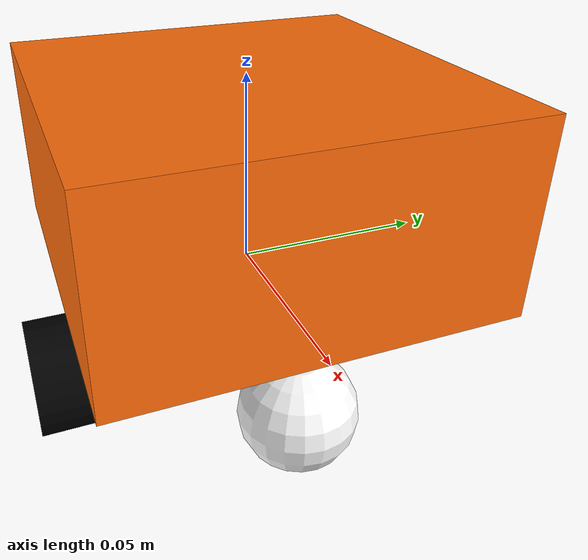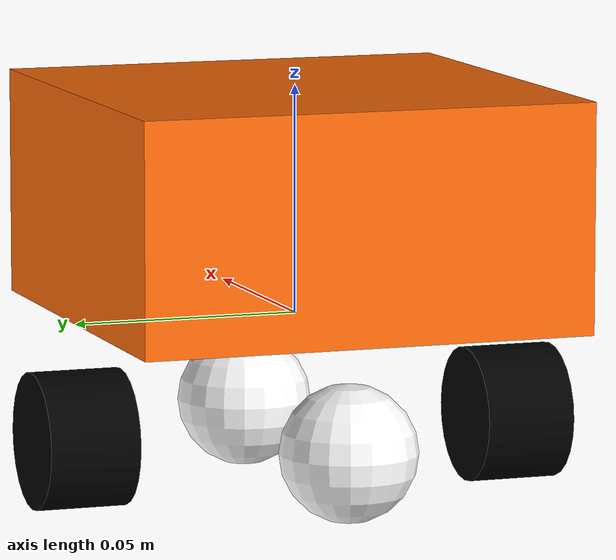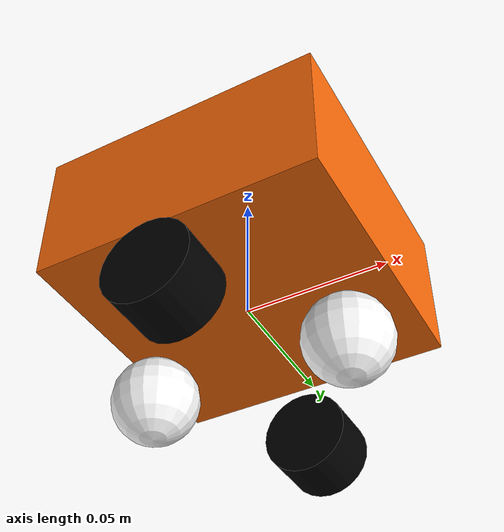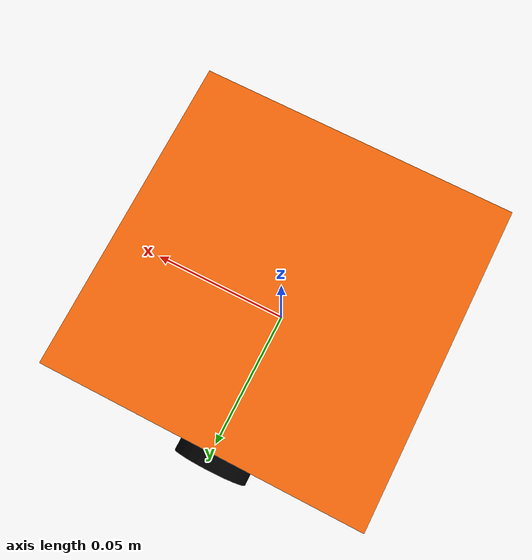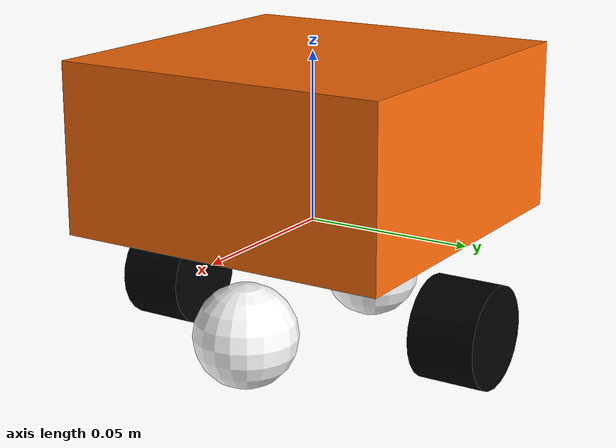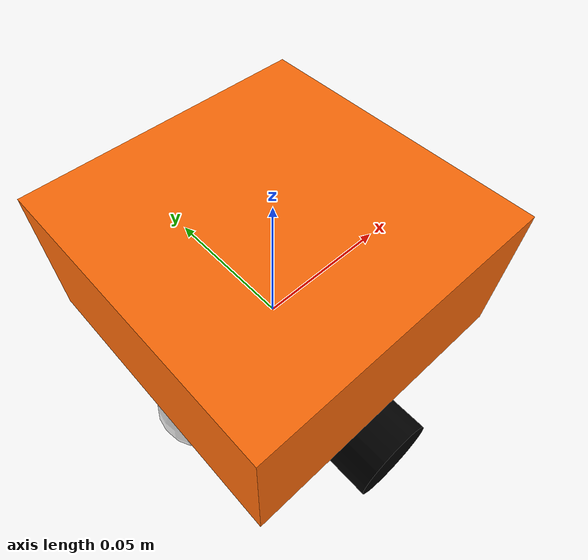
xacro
<?xml version="1.0"?>
<!-- Basic differential drive mobile base -->
<robot xmlns:xacro="http://www.ros.org/wiki/xacro" name="diffdrive_robot">
  <xacro:arg name="prefix" default="" />
  <xacro:arg name="use_mock_hardware" default="false" />
  <!-- true: the simulated robot (rocko_env/SimPlant, Tier 3) instead of the real hardware or the
       mock. Wins over use_mock_hardware if both are true. -->
  <xacro:arg name="use_sim_plant" default="false" />

  <!-- ESTIMATE, NOT MEASURED. Nothing below was weighed or measured on ROCKO. -->
  <xacro:arg name="wheel_radius_m" default="0.06" />
  <xacro:arg name="belt_ratio" default="1.355" />
  <xacro:arg name="wheel_mass_kg" default="0.3" />
  <xacro:arg name="body_mass_kg" default="2.0" />
  <xacro:arg name="com_height_m" default="0.20" />
  <xacro:arg name="body_height_m" default="0.40" />
  <xacro:arg name="body_depth_m" default="0.10" />
  <xacro:arg name="gravity_m_s2" default="9.81" />
  <xacro:arg name="motor_stall_torque_Nm" default="0.774725" />
  <!-- 1150 RPM = 1150/60*2*pi rad/s, floating point on purpose; see SimPlantModel.hpp. -->
  <xacro:arg name="motor_no_load_speed_rad_s" default="120.42771838760874" />
  <xacro:arg name="motor_stall_current_A" default="9.2" />
  <xacro:arg name="motor_no_load_current_A" default="0.25" />
  <xacro:arg name="coulomb_friction_Nm" default="0.0" />
  <xacro:arg name="battery_voltage_V" default="12.0" />
  <xacro:arg name="motor_rated_voltage_V" default="12.0" />
  <xacro:arg name="imu_delay_ms" default="20" />
  <xacro:arg name="imu_pitch_bias_deg" default="0.0" />
  <xacro:arg name="fallen_pitch_deg" default="60.0" />
  <!-- Conventions and switches: assumptions, not physics (sim-plant.md §2.4). -->
  <xacro:arg name="pitch_sign" default="-1" />
  <xacro:arg name="encoder_sign" default="1" />
  <xacro:arg name="model_write_quirks" default="true" />
  <xacro:arg name="model_encoder_node" default="true" />
  <xacro:arg name="imu_delay_max_ms" default="100" />
  <!-- Scenario and fault injection, all OFF by default. Times count from release. -->
  <xacro:arg name="initial_pitch_deg" default="0.0" />
  <xacro:arg name="disable_torque" default="false" />
  <xacro:arg name="imu_fault_start_s" default="0.0" />
  <xacro:arg name="imu_fault_duration_s" default="0.0" />
  <xacro:arg name="impulse_time_s" default="-1.0" />
  <xacro:arg name="impulse_angular_velocity_deg_per_s" default="0.0" />

  <xacro:include filename="$(find rocko_env)/urdf/rocko_description.urdf.xacro" />

  <!-- Import Rviz colors -->
  <xacro:include filename="$(find rocko_env)/urdf/rocko.materials.xacro" />

  <!-- Import diffbot ros2_control description -->
  <xacro:include filename="$(find rocko_env)/ros2_control/rocko.ros2_control.xacro" />

  <xacro:diffbot prefix="$(arg prefix)" />

  <xacro:rocko_ros2_control
    name="DiffBot" prefix="$(arg prefix)" use_mock_hardware="$(arg use_mock_hardware)"
    use_sim_plant="$(arg use_sim_plant)"/>

</robot>

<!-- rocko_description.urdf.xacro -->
<robot xmlns:xacro="http://www.ros.org/wiki/xacro">

  <xacro:macro name="diffbot" params="prefix">

  <!-- Constants for robot dimensions -->
  <xacro:property name="PI" value="3.1415926535897931"/>
  <xacro:property name="base_mass" value="0.3" /> <!-- arbitrary value for base mass -->
  <xacro:property name="base_width" value="0.1" />
  <xacro:property name="base_length" value="0.1" />
  <xacro:property name="base_height" value="0.05" />
  <xacro:property name="wheel_mass" value="0.3" /> <!-- arbitrary value for wheel mass -->
  <xacro:property name="wheel_len" value="0.020" />
  <xacro:property name="wheel_radius" value="0.015" />
  <xacro:property name="caster_wheel_mass" value="0.1" /> <!-- arbitrary value for caster wheel mass -->
  <xacro:property name="caster_wheel_radius" value="0.015" />
  <xacro:property name="z_offset" value="-${base_height/2}" /> <!-- Space btw top of beam and the each joint -->

  <!-- Base Link -->
  <link name="${prefix}base_link">
    <collision>
      <origin xyz="0 0 0" rpy="0 0 0"/>
      <geometry>
        <box size="${base_width} ${base_length} ${base_height}"/>
      </geometry>
    </collision>

    <visual>
      <origin xyz="0 0 ${base_height/2}" rpy="0 0 0"/>
      <geometry>
        <box size="${base_width} ${base_length} ${base_height}"/>
      </geometry>
      <material name="orange"/>
    </visual>

    <inertial>
      <origin xyz="0 0 0" rpy="0 0 0"/>
      <mass value="${base_mass}"/>
      <inertia
        ixx="${base_mass / 12.0 * (base_length*base_length + base_height*base_height)}" ixy="0.0" ixz="0.0"
        iyy="${base_mass / 12.0 * (base_height*base_height + base_width*base_width)}" iyz="0.0"
        izz="${base_mass / 12.0 * (base_width*base_width + base_length*base_length)}"/>
      </inertial>
    </link>

    <joint name="${prefix}left_wheel_joint" type="continuous">
      <parent link="${prefix}base_link"/>
      <child link="${prefix}left_wheel"/>
      <origin xyz="0 -${base_width/2} ${z_offset}" rpy="0 0 0"/>
      <axis xyz="0 1 0"/>
      <dynamics damping="0.2"/>
      <limit effort="100" velocity="1.0"/>
    </joint>

    <!-- left wheel Link -->
    <link name="${prefix}left_wheel">
      <collision>
        <origin xyz="0 0 0" rpy="${PI/2} 0 0"/>
        <geometry>
          <cylinder length="${wheel_len}" radius="${wheel_radius}"/>
        </geometry>
      </collision>

      <visual>
        <origin xyz="0 0 0" rpy="${PI/2} 0 0"/>
        <geometry>
          <cylinder length="${wheel_len}" radius="${wheel_radius}"/>
        </geometry>
        <material name="black"/>
      </visual>

      <inertial>
        <origin xyz="0 0 0" rpy="${PI/2} 0 0"/>
        <mass value="${wheel_mass}"/>
        <inertia
          ixx="${wheel_mass / 12.0 * (3*wheel_radius*wheel_radius + wheel_len*wheel_len)}" ixy="0.0" ixz="0.0"
          iyy="${wheel_mass / 12.0 * (3*wheel_radius*wheel_radius + wheel_len*wheel_len)}" iyz="0.0"
          izz="${wheel_mass / 2.0 * wheel_radius*wheel_radius}"/>
        </inertial>
      </link>

    <joint name="${prefix}right_wheel_joint" type="continuous">
      <parent link="${prefix}base_link"/>
      <child link="${prefix}right_wheel"/>
      <origin xyz="0 ${base_width/2} ${z_offset}" rpy="0 0 0"/>
      <axis xyz="0 1 0"/>
      <dynamics damping="0.2"/>
      <limit effort="100" velocity="1.0"/>
    </joint>

    <!-- right wheel Link -->
    <link name="${prefix}right_wheel">
      <collision>
        <origin xyz="0 0 0" rpy="${PI/2} 0 0"/>
        <geometry>
          <cylinder length="${wheel_len}" radius="${wheel_radius}"/>
        </geometry>
      </collision>

      <visual>
        <origin xyz="0 0 0" rpy="${PI/2} 0 0"/>
        <geometry>
          <cylinder length="${wheel_len}" radius="${wheel_radius}"/>
        </geometry>
        <material name="black"/>
      </visual>

      <inertial>
        <origin xyz="0 0 0" rpy="${PI/2} 0 0"/>
        <mass value="${wheel_mass}"/>
        <inertia
          ixx="${wheel_mass / 12.0 * (3*wheel_radius*wheel_radius + wheel_len*wheel_len)}" ixy="0.0" ixz="0.0"
          iyy="${wheel_mass / 12.0 * (3*wheel_radius*wheel_radius + wheel_len*wheel_len)}" iyz="0.0"
          izz="${wheel_mass / 2.0 * wheel_radius*wheel_radius}"/>
        </inertial>
      </link>

    <joint name="${prefix}caster_frontal_wheel_joint" type="fixed">
      <parent link="${prefix}base_link"/>
      <child link="${prefix}caster_frontal_wheel"/>
      <origin xyz="${base_width/2 - caster_wheel_radius} 0 ${z_offset}" rpy="0 0 0"/>
    </joint>

    <!-- caster frontal wheel Link -->
    <link name="${prefix}caster_frontal_wheel">
      <collision>
        <origin xyz="0 0 0" rpy="0 0 0"/>
        <geometry>
          <sphere radius="${caster_wheel_radius}"/>
        </geometry>
      </collision>

      <visual>
        <origin xyz="0 0 0" rpy="0 0 0"/>
        <geometry>
          <sphere radius="${caster_wheel_radius}"/>
        </geometry>
        <material name="white"/>
      </visual>

      <inertial>
        <origin xyz="0 0 0" rpy="0 0 0"/>
        <mass value="${caster_wheel_mass}"/>
        <inertia
          ixx="${caster_wheel_mass * 0.4 * (caster_wheel_radius * caster_wheel_radius)}" ixy="0.0" ixz="0.0"
          iyy="${caster_wheel_mass * 0.4 * (caster_wheel_radius * caster_wheel_radius)}" iyz="0.0"
          izz="${caster_wheel_mass * 0.4 * (caster_wheel_radius * caster_wheel_radius)}"/>
        </inertial>
      </link>

    <joint name="${prefix}caster_rear_wheel_joint" type="fixed">
      <parent link="${prefix}base_link"/>
      <child link="${prefix}caster_rear_wheel"/>
      <origin xyz="${-base_width/2 + caster_wheel_radius} 0 ${z_offset}" rpy="0 0 0"/>
    </joint>

    <!-- caster rear wheel Link -->
    <link name="${prefix}caster_rear_wheel">
      <collision>
        <origin xyz="0 0 0" rpy="0 0 0"/>
        <geometry>
          <sphere radius="${caster_wheel_radius}"/>
        </geometry>
      </collision>

      <visual>
        <origin xyz="0 0 0" rpy="0 0 0"/>
        <geometry>
          <sphere radius="${caster_wheel_radius}"/>
        </geometry>
        <material name="white"/>
      </visual>

      <inertial>
        <origin xyz="0 0 0" rpy="0 0 0"/>
        <mass value="${caster_wheel_mass}"/>
        <inertia
          ixx="${caster_wheel_mass * 0.4 * (caster_wheel_radius * caster_wheel_radius)}" ixy="0.0" ixz="0.0"
          iyy="${caster_wheel_mass * 0.4 * (caster_wheel_radius * caster_wheel_radius)}" iyz="0.0"
          izz="${caster_wheel_mass * 0.4 * (caster_wheel_radius * caster_wheel_radius)}"/>
        </inertial>
      </link>

  </xacro:macro>

</robot>

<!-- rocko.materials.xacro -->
<!--
Copied from ROS1 example:
https://github.com/ros-simulation/gazebo_ros_demos/blob/kinetic-devel/rrbot_description/urdf/materials.xacro
-->
<robot>

  <material name="black">
    <color rgba="0.0 0.0 0.0 1.0"/>
  </material>

  <material name="blue">
    <color rgba="0.0 0.0 0.8 1.0"/>
  </material>

  <material name="green">
    <color rgba="0.0 0.8 0.0 1.0"/>
  </material>

  <material name="grey">
    <color rgba="0.2 0.2 0.2 1.0"/>
  </material>

  <material name="orange">
    <color rgba="${255/255} ${108/255} ${10/255} 1.0"/>
  </material>

  <material name="brown">
    <color rgba="${222/255} ${207/255} ${195/255} 1.0"/>
  </material>

  <material name="red">
    <color rgba="0.8 0.0 0.0 1.0"/>
  </material>

  <material name="white">
    <color rgba="1.0 1.0 1.0 1.0"/>
  </material>

</robot>
